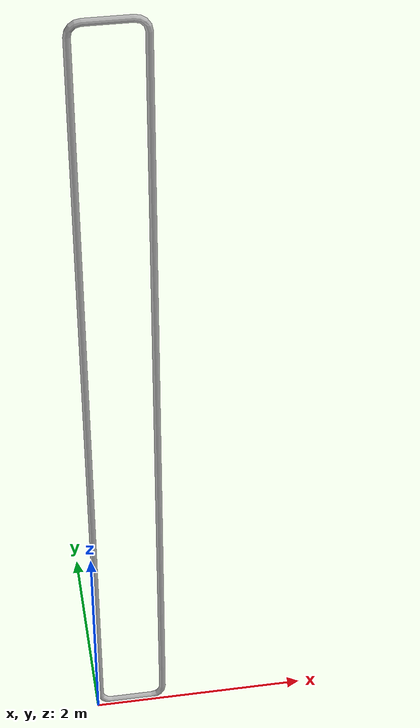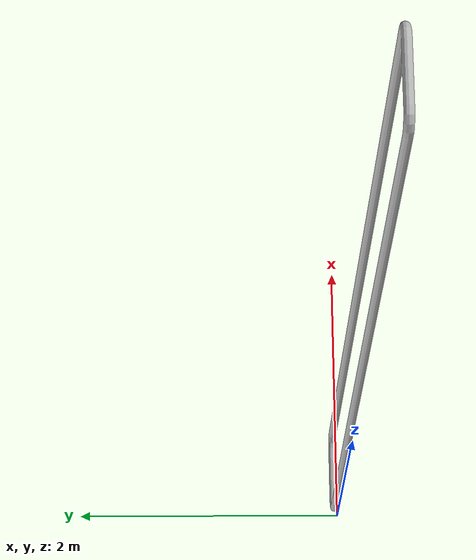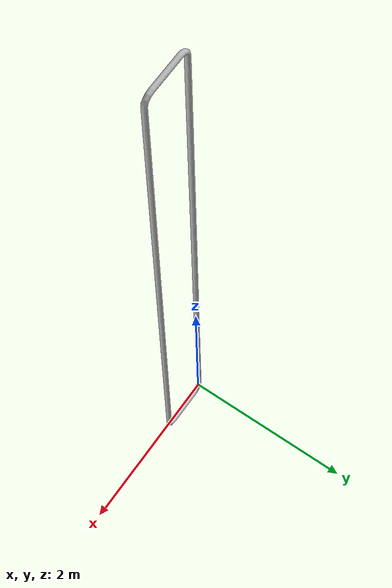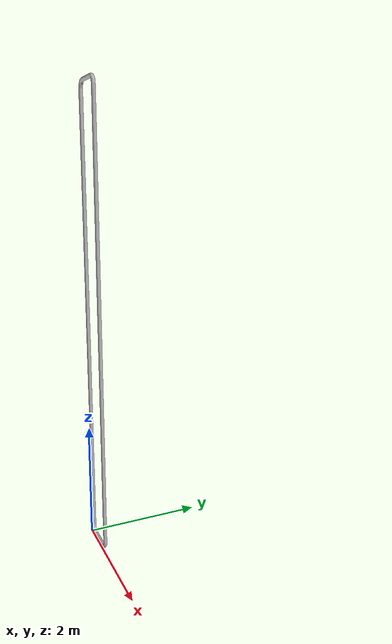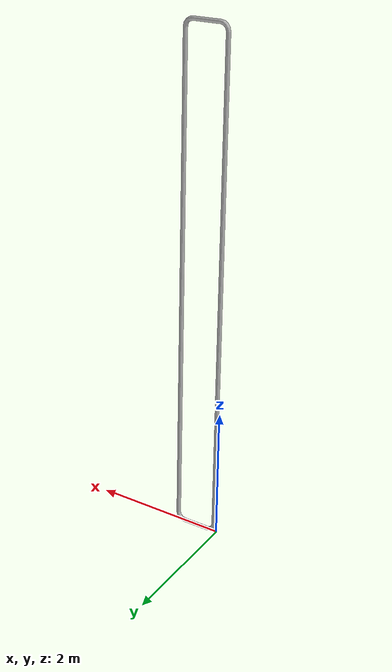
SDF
<?xml version="1.0" ?>
<sdf version="1.6">
  <model name="piperail">
    <static>true</static>
    <link name="link">
      <visual name="visual">
        <geometry>
          <mesh>
            <scale>0.001 0.001 0.001</scale>
            <uri>model://piperail/meshes/piperail.STL</uri>
          </mesh>
        </geometry>
      </visual>
    </link>
  </model>
</sdf>
